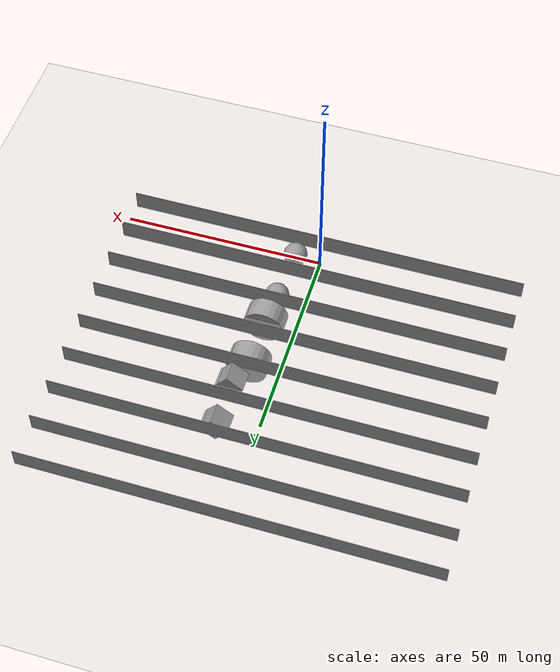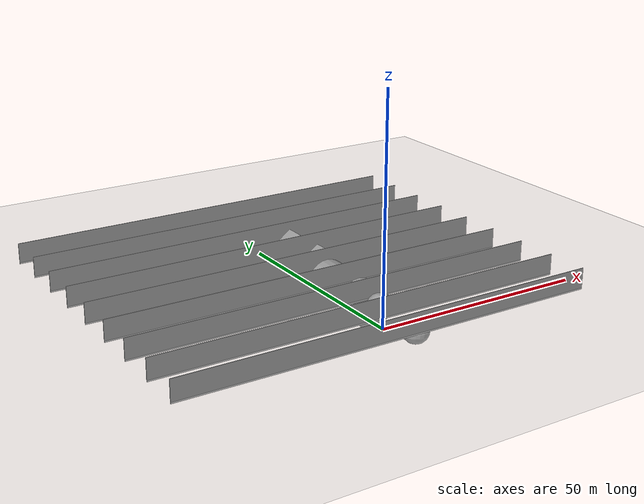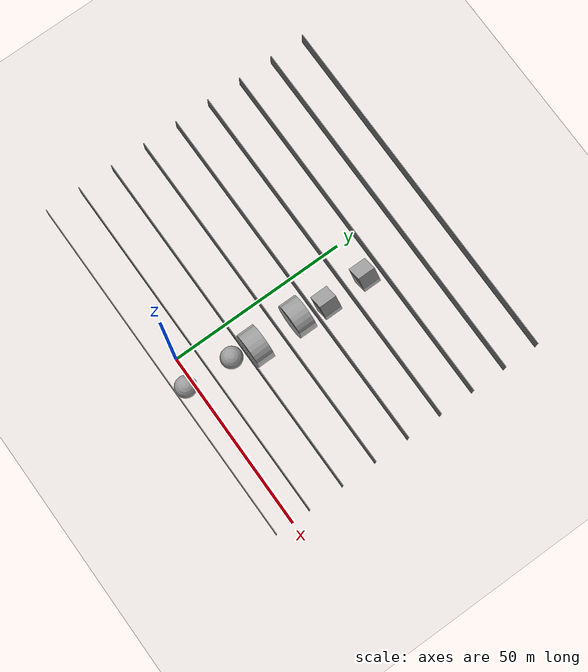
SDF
<sdf version="1.7">
 <world name="default">
  <light name="sun" type="directional">
   <pose>0 0 10 0 -0 0</pose>
   <diffuse>0.8 0.8 0.8 1</diffuse>
   <specular>0.2 0.2 0.2 1</specular>
   <attenuation>
    <range>1000</range>
    <constant>0.9</constant>
    <linear>0.01</linear>
    <quadratic>0.001</quadratic>
   </attenuation>
   <direction>-0.5 0.1 -0.9</direction>
   <spot><inner_angle>0</inner_angle><outer_angle>0</outer_angle><falloff>0</falloff></spot>
  </light>
  <model name="ground_plane">
   <pose>0 35 0 0 -0 0</pose>
   <static>1</static>
   <link name="link">
    <collision name="collision">
     <geometry><plane><normal>0 0 1</normal><size>100 100</size></plane></geometry>
     <surface><friction><ode><mu>100</mu><mu2>50</mu2></ode></friction></surface>
    </collision>
    <visual name="visual">
     <cast_shadows>0</cast_shadows>
     <geometry><plane><normal>0 0 1</normal><size>100 100</size></plane></geometry>
     <material>
      <script><uri>file://media/materials/scripts/gazebo.material</uri><name>Gazebo/Grey</name></script>
     </material>
    </visual>
   </link>
  </model>
  <physics type="ode">
   <real_time_update_rate>0</real_time_update_rate>
   <ode>
    <solver>
     <thread_position_correction>1</thread_position_correction>
     <island_threads>3</island_threads>
     <type>quick</type>
     <iters>50</iters>
     <sor>1.3</sor>
     <use_dynamic_moi_rescaling>0</use_dynamic_moi_rescaling>
    </solver>
    <constraints>
     <cfm>0</cfm>
     <erp>0.2</erp>
     <contact_max_correcting_vel>100</contact_max_correcting_vel>
     <contact_surface_layer>0.001</contact_surface_layer>
    </constraints>
   </ode>
   <max_step_size>0.001</max_step_size>
   <real_time_factor>1</real_time_factor>
  </physics>
  <gravity>0 0 -9.8</gravity>
  <magnetic_field>6e-06 2.3e-05 -4.2e-05</magnetic_field>
  <atmosphere type="adiabatic"/>
  <scene><ambient>0.4 0.4 0.4 1</ambient><background>0.7 0.7 0.7 1</background><shadows>1</shadows></scene>
  <spherical_coordinates>
   <surface_model>EARTH_WGS84</surface_model>
   <latitude_deg>0</latitude_deg>
   <longitude_deg>0</longitude_deg>
   <elevation>0</elevation>
   <heading_deg>0</heading_deg>
  </spherical_coordinates>
  <model name="terrian">
   <static>1</static>
   <link name="link_1">
    <pose>0 -40 0 0 -0 0</pose>
    <visual name="visual">
     <geometry><box><size>100 0.2 5</size></box></geometry>
     <material>
      <lighting>1</lighting>
      <script><uri>file://media/materials/scripts/gazebo.material</uri><name>Gazebo/Grey</name></script>
      <shader type="pixel"><normal_map>__default__</normal_map></shader>
      <ambient>0.3 0.3 0.3 1</ambient>
      <diffuse>0.7 0.7 0.7 1</diffuse>
      <specular>0.01 0.01 0.01 1</specular>
      <emissive>0 0 0 1</emissive>
     </material>
    </visual>
    <visual name="ModelPreview_1::link_1::visual_3">
     <pose>0 30 0 0 -0 0</pose>
     <geometry><box><size>100 0.2 5</size></box></geometry>
     <material>
      <lighting>1</lighting>
      <script><uri>file://media/materials/scripts/gazebo.material</uri><name>Gazebo/Grey</name></script>
      <shader type="pixel"><normal_map>__default__</normal_map></shader>
      <ambient>0.3 0.3 0.3 1</ambient>
      <diffuse>0.7 0.7 0.7 1</diffuse>
      <specular>0.01 0.01 0.01 1</specular>
      <emissive>0 0 0 1</emissive>
     </material>
    </visual>
    <visual name="ModelPreview_1::link_1::visual_6">
     <pose>0 60 0 0 -0 0</pose>
     <geometry><box><size>100 0.2 5</size></box></geometry>
     <material>
      <lighting>1</lighting>
      <script><uri>file://media/materials/scripts/gazebo.material</uri><name>Gazebo/Grey</name></script>
      <shader type="pixel"><normal_map>__default__</normal_map></shader>
      <ambient>0.3 0.3 0.3 1</ambient>
      <diffuse>0.7 0.7 0.7 1</diffuse>
      <specular>0.01 0.01 0.01 1</specular>
      <emissive>0 0 0 1</emissive>
     </material>
    </visual>
    <visual name="ModelPreview_1::link_1::visual_7">
     <pose>0 70 0 0 -0 0</pose>
     <geometry><box><size>100 0.2 5</size></box></geometry>
     <material>
      <lighting>1</lighting>
      <script><uri>file://media/materials/scripts/gazebo.material</uri><name>Gazebo/Grey</name></script>
      <shader type="pixel"><normal_map>__default__</normal_map></shader>
      <ambient>0.3 0.3 0.3 1</ambient>
      <diffuse>0.7 0.7 0.7 1</diffuse>
      <specular>0.01 0.01 0.01 1</specular>
      <emissive>0 0 0 1</emissive>
     </material>
    </visual>
    <visual name="ModelPreview_1::link_1::visual_8">
     <pose>0 80 0 0 -0 0</pose>
     <geometry><box><size>100 0.2 5</size></box></geometry>
     <material>
      <lighting>1</lighting>
      <script><uri>file://media/materials/scripts/gazebo.material</uri><name>Gazebo/Grey</name></script>
      <shader type="pixel"><normal_map>__default__</normal_map></shader>
      <ambient>0.3 0.3 0.3 1</ambient>
      <diffuse>0.7 0.7 0.7 1</diffuse>
      <specular>0.01 0.01 0.01 1</specular>
      <emissive>0 0 0 1</emissive>
     </material>
    </visual>
    <visual name="ModelPreview_1::link_1::visual_5">
     <pose>0 50 0 0 -0 0</pose>
     <geometry><box><size>100 0.2 5</size></box></geometry>
     <material>
      <lighting>1</lighting>
      <script><uri>file://media/materials/scripts/gazebo.material</uri><name>Gazebo/Grey</name></script>
      <shader type="pixel"><normal_map>__default__</normal_map></shader>
      <ambient>0.3 0.3 0.3 1</ambient>
      <diffuse>0.7 0.7 0.7 1</diffuse>
      <specular>0.01 0.01 0.01 1</specular>
      <emissive>0 0 0 1</emissive>
     </material>
    </visual>
    <visual name="ModelPreview_1::link_1::visual_4">
     <pose>0 40 0 0 -0 0</pose>
     <geometry><box><size>100 0.2 5</size></box></geometry>
     <material>
      <lighting>1</lighting>
      <script><uri>file://media/materials/scripts/gazebo.material</uri><name>Gazebo/Grey</name></script>
      <shader type="pixel"><normal_map>__default__</normal_map></shader>
      <ambient>0.3 0.3 0.3 1</ambient>
      <diffuse>0.7 0.7 0.7 1</diffuse>
      <specular>0.01 0.01 0.01 1</specular>
      <emissive>0 0 0 1</emissive>
     </material>
    </visual>
    <visual name="ModelPreview_1::link_1::visual_2">
     <pose>0 20 0 0 -0 0</pose>
     <geometry><box><size>100 0.2 5</size></box></geometry>
     <material>
      <lighting>1</lighting>
      <script><uri>file://media/materials/scripts/gazebo.material</uri><name>Gazebo/Grey</name></script>
      <shader type="pixel"><normal_map>__default__</normal_map></shader>
      <ambient>0.3 0.3 0.3 1</ambient>
      <diffuse>0.7 0.7 0.7 1</diffuse>
      <specular>0.01 0.01 0.01 1</specular>
      <emissive>0 0 0 1</emissive>
     </material>
    </visual>
    <visual name="ModelPreview_1::link_1::visual_1">
     <pose>0 10 0 0 -0 0</pose>
     <geometry><box><size>100 0.2 5</size></box></geometry>
     <material>
      <lighting>1</lighting>
      <script><uri>file://media/materials/scripts/gazebo.material</uri><name>Gazebo/Grey</name></script>
      <shader type="pixel"><normal_map>__default__</normal_map></shader>
      <ambient>0.3 0.3 0.3 1</ambient>
      <diffuse>0.7 0.7 0.7 1</diffuse>
      <specular>0.01 0.01 0.01 1</specular>
      <emissive>0 0 0 1</emissive>
     </material>
    </visual>
    <collision name="collision">
     <geometry><box><size>100 0.2 5</size></box></geometry>
     <surface>
      <friction>
       <ode><mu>1</mu><mu2>1</mu2><fdir1>0 0 0</fdir1><slip1>0</slip1><slip2>0</slip2></ode>
       <torsional>
        <coefficient>1</coefficient>
        <patch_radius>0</patch_radius>
        <surface_radius>0</surface_radius>
        <use_patch_radius>1</use_patch_radius>
        <ode><slip>0</slip></ode>
       </torsional>
      </friction>
      <bounce><restitution_coefficient>0</restitution_coefficient><threshold>1e+06</threshold></bounce>
      <contact>
       <collide_without_contact>0</collide_without_contact>
       <collide_without_contact_bitmask>1</collide_without_contact_bitmask>
       <collide_bitmask>1</collide_bitmask>
       <ode>
        <soft_cfm>0</soft_cfm>
        <soft_erp>0.2</soft_erp>
        <kp>1e+13</kp>
        <kd>1</kd>
        <max_vel>0.01</max_vel>
        <min_depth>0</min_depth>
       </ode>
       <bullet>
        <split_impulse>1</split_impulse>
        <split_impulse_penetration_threshold>-0.01</split_impulse_penetration_threshold>
        <soft_cfm>0</soft_cfm>
        <soft_erp>0.2</soft_erp>
        <kp>1e+13</kp>
        <kd>1</kd>
       </bullet>
      </contact>
     </surface>
    </collision>
    <collision name="collision_3">
     <pose>0 30 0 0 -0 0</pose>
     <geometry><box><size>100 0.2 5</size></box></geometry>
     <surface>
      <friction>
       <ode><mu>1</mu><mu2>1</mu2><fdir1>0 0 0</fdir1><slip1>0</slip1><slip2>0</slip2></ode>
       <torsional>
        <coefficient>1</coefficient>
        <patch_radius>0</patch_radius>
        <surface_radius>0</surface_radius>
        <use_patch_radius>1</use_patch_radius>
        <ode><slip>0</slip></ode>
       </torsional>
      </friction>
      <bounce><restitution_coefficient>0</restitution_coefficient><threshold>1e+06</threshold></bounce>
      <contact>
       <collide_without_contact>0</collide_without_contact>
       <collide_without_contact_bitmask>1</collide_without_contact_bitmask>
       <collide_bitmask>1</collide_bitmask>
       <ode>
        <soft_cfm>0</soft_cfm>
        <soft_erp>0.2</soft_erp>
        <kp>1e+13</kp>
        <kd>1</kd>
        <max_vel>0.01</max_vel>
        <min_depth>0</min_depth>
       </ode>
       <bullet>
        <split_impulse>1</split_impulse>
        <split_impulse_penetration_threshold>-0.01</split_impulse_penetration_threshold>
        <soft_cfm>0</soft_cfm>
        <soft_erp>0.2</soft_erp>
        <kp>1e+13</kp>
        <kd>1</kd>
       </bullet>
      </contact>
     </surface>
    </collision>
    <collision name="collision_7">
     <pose>0 70 0 0 -0 0</pose>
     <geometry><box><size>100 0.2 5</size></box></geometry>
     <surface>
      <friction>
       <ode><mu>1</mu><mu2>1</mu2><fdir1>0 0 0</fdir1><slip1>0</slip1><slip2>0</slip2></ode>
       <torsional>
        <coefficient>1</coefficient>
        <patch_radius>0</patch_radius>
        <surface_radius>0</surface_radius>
        <use_patch_radius>1</use_patch_radius>
        <ode><slip>0</slip></ode>
       </torsional>
      </friction>
      <bounce><restitution_coefficient>0</restitution_coefficient><threshold>1e+06</threshold></bounce>
      <contact>
       <collide_without_contact>0</collide_without_contact>
       <collide_without_contact_bitmask>1</collide_without_contact_bitmask>
       <collide_bitmask>1</collide_bitmask>
       <ode>
        <soft_cfm>0</soft_cfm>
        <soft_erp>0.2</soft_erp>
        <kp>1e+13</kp>
        <kd>1</kd>
        <max_vel>0.01</max_vel>
        <min_depth>0</min_depth>
       </ode>
       <bullet>
        <split_impulse>1</split_impulse>
        <split_impulse_penetration_threshold>-0.01</split_impulse_penetration_threshold>
        <soft_cfm>0</soft_cfm>
        <soft_erp>0.2</soft_erp>
        <kp>1e+13</kp>
        <kd>1</kd>
       </bullet>
      </contact>
     </surface>
    </collision>
    <collision name="collision_6">
     <pose>0 60 0 0 -0 0</pose>
     <geometry><box><size>100 0.2 5</size></box></geometry>
     <surface>
      <friction>
       <ode><mu>1</mu><mu2>1</mu2><fdir1>0 0 0</fdir1><slip1>0</slip1><slip2>0</slip2></ode>
       <torsional>
        <coefficient>1</coefficient>
        <patch_radius>0</patch_radius>
        <surface_radius>0</surface_radius>
        <use_patch_radius>1</use_patch_radius>
        <ode><slip>0</slip></ode>
       </torsional>
      </friction>
      <bounce><restitution_coefficient>0</restitution_coefficient><threshold>1e+06</threshold></bounce>
      <contact>
       <collide_without_contact>0</collide_without_contact>
       <collide_without_contact_bitmask>1</collide_without_contact_bitmask>
       <collide_bitmask>1</collide_bitmask>
       <ode>
        <soft_cfm>0</soft_cfm>
        <soft_erp>0.2</soft_erp>
        <kp>1e+13</kp>
        <kd>1</kd>
        <max_vel>0.01</max_vel>
        <min_depth>0</min_depth>
       </ode>
       <bullet>
        <split_impulse>1</split_impulse>
        <split_impulse_penetration_threshold>-0.01</split_impulse_penetration_threshold>
        <soft_cfm>0</soft_cfm>
        <soft_erp>0.2</soft_erp>
        <kp>1e+13</kp>
        <kd>1</kd>
       </bullet>
      </contact>
     </surface>
    </collision>
    <collision name="collision_5">
     <pose>0 50 0 0 -0 0</pose>
     <geometry><box><size>100 0.2 5</size></box></geometry>
     <surface>
      <friction>
       <ode><mu>1</mu><mu2>1</mu2><fdir1>0 0 0</fdir1><slip1>0</slip1><slip2>0</slip2></ode>
       <torsional>
        <coefficient>1</coefficient>
        <patch_radius>0</patch_radius>
        <surface_radius>0</surface_radius>
        <use_patch_radius>1</use_patch_radius>
        <ode><slip>0</slip></ode>
       </torsional>
      </friction>
      <bounce><restitution_coefficient>0</restitution_coefficient><threshold>1e+06</threshold></bounce>
      <contact>
       <collide_without_contact>0</collide_without_contact>
       <collide_without_contact_bitmask>1</collide_without_contact_bitmask>
       <collide_bitmask>1</collide_bitmask>
       <ode>
        <soft_cfm>0</soft_cfm>
        <soft_erp>0.2</soft_erp>
        <kp>1e+13</kp>
        <kd>1</kd>
        <max_vel>0.01</max_vel>
        <min_depth>0</min_depth>
       </ode>
       <bullet>
        <split_impulse>1</split_impulse>
        <split_impulse_penetration_threshold>-0.01</split_impulse_penetration_threshold>
        <soft_cfm>0</soft_cfm>
        <soft_erp>0.2</soft_erp>
        <kp>1e+13</kp>
        <kd>1</kd>
       </bullet>
      </contact>
     </surface>
    </collision>
    <collision name="collision_8">
     <pose>0 80 0 0 -0 0</pose>
     <geometry><box><size>100 0.2 5</size></box></geometry>
     <surface>
      <friction>
       <ode><mu>1</mu><mu2>1</mu2><fdir1>0 0 0</fdir1><slip1>0</slip1><slip2>0</slip2></ode>
       <torsional>
        <coefficient>1</coefficient>
        <patch_radius>0</patch_radius>
        <surface_radius>0</surface_radius>
        <use_patch_radius>1</use_patch_radius>
        <ode><slip>0</slip></ode>
       </torsional>
      </friction>
      <bounce><restitution_coefficient>0</restitution_coefficient><threshold>1e+06</threshold></bounce>
      <contact>
       <collide_without_contact>0</collide_without_contact>
       <collide_without_contact_bitmask>1</collide_without_contact_bitmask>
       <collide_bitmask>1</collide_bitmask>
       <ode>
        <soft_cfm>0</soft_cfm>
        <soft_erp>0.2</soft_erp>
        <kp>1e+13</kp>
        <kd>1</kd>
        <max_vel>0.01</max_vel>
        <min_depth>0</min_depth>
       </ode>
       <bullet>
        <split_impulse>1</split_impulse>
        <split_impulse_penetration_threshold>-0.01</split_impulse_penetration_threshold>
        <soft_cfm>0</soft_cfm>
        <soft_erp>0.2</soft_erp>
        <kp>1e+13</kp>
        <kd>1</kd>
       </bullet>
      </contact>
     </surface>
    </collision>
    <collision name="collision_2">
     <pose>0 20 0 0 -0 0</pose>
     <geometry><box><size>100 0.2 5</size></box></geometry>
     <surface>
      <friction>
       <ode><mu>1</mu><mu2>1</mu2><fdir1>0 0 0</fdir1><slip1>0</slip1><slip2>0</slip2></ode>
       <torsional>
        <coefficient>1</coefficient>
        <patch_radius>0</patch_radius>
        <surface_radius>0</surface_radius>
        <use_patch_radius>1</use_patch_radius>
        <ode><slip>0</slip></ode>
       </torsional>
      </friction>
      <bounce><restitution_coefficient>0</restitution_coefficient><threshold>1e+06</threshold></bounce>
      <contact>
       <collide_without_contact>0</collide_without_contact>
       <collide_without_contact_bitmask>1</collide_without_contact_bitmask>
       <collide_bitmask>1</collide_bitmask>
       <ode>
        <soft_cfm>0</soft_cfm>
        <soft_erp>0.2</soft_erp>
        <kp>1e+13</kp>
        <kd>1</kd>
        <max_vel>0.01</max_vel>
        <min_depth>0</min_depth>
       </ode>
       <bullet>
        <split_impulse>1</split_impulse>
        <split_impulse_penetration_threshold>-0.01</split_impulse_penetration_threshold>
        <soft_cfm>0</soft_cfm>
        <soft_erp>0.2</soft_erp>
        <kp>1e+13</kp>
        <kd>1</kd>
       </bullet>
      </contact>
     </surface>
    </collision>
    <collision name="collision_4">
     <pose>0 40 0 0 -0 0</pose>
     <geometry><box><size>100 0.2 5</size></box></geometry>
     <surface>
      <friction>
       <ode><mu>1</mu><mu2>1</mu2><fdir1>0 0 0</fdir1><slip1>0</slip1><slip2>0</slip2></ode>
       <torsional>
        <coefficient>1</coefficient>
        <patch_radius>0</patch_radius>
        <surface_radius>0</surface_radius>
        <use_patch_radius>1</use_patch_radius>
        <ode><slip>0</slip></ode>
       </torsional>
      </friction>
      <bounce><restitution_coefficient>0</restitution_coefficient><threshold>1e+06</threshold></bounce>
      <contact>
       <collide_without_contact>0</collide_without_contact>
       <collide_without_contact_bitmask>1</collide_without_contact_bitmask>
       <collide_bitmask>1</collide_bitmask>
       <ode>
        <soft_cfm>0</soft_cfm>
        <soft_erp>0.2</soft_erp>
        <kp>1e+13</kp>
        <kd>1</kd>
        <max_vel>0.01</max_vel>
        <min_depth>0</min_depth>
       </ode>
       <bullet>
        <split_impulse>1</split_impulse>
        <split_impulse_penetration_threshold>-0.01</split_impulse_penetration_threshold>
        <soft_cfm>0</soft_cfm>
        <soft_erp>0.2</soft_erp>
        <kp>1e+13</kp>
        <kd>1</kd>
       </bullet>
      </contact>
     </surface>
    </collision>
    <collision name="collision_1">
     <pose>0 10 0 0 -0 0</pose>
     <geometry><box><size>100 0.2 5</size></box></geometry>
     <surface>
      <friction>
       <ode><mu>1</mu><mu2>1</mu2><fdir1>0 0 0</fdir1><slip1>0</slip1><slip2>0</slip2></ode>
       <torsional>
        <coefficient>1</coefficient>
        <patch_radius>0</patch_radius>
        <surface_radius>0</surface_radius>
        <use_patch_radius>1</use_patch_radius>
        <ode><slip>0</slip></ode>
       </torsional>
      </friction>
      <bounce><restitution_coefficient>0</restitution_coefficient><threshold>1e+06</threshold></bounce>
      <contact>
       <collide_without_contact>0</collide_without_contact>
       <collide_without_contact_bitmask>1</collide_without_contact_bitmask>
       <collide_bitmask>1</collide_bitmask>
       <ode>
        <soft_cfm>0</soft_cfm>
        <soft_erp>0.2</soft_erp>
        <kp>1e+13</kp>
        <kd>1</kd>
        <max_vel>0.01</max_vel>
        <min_depth>0</min_depth>
       </ode>
       <bullet>
        <split_impulse>1</split_impulse>
        <split_impulse_penetration_threshold>-0.01</split_impulse_penetration_threshold>
        <soft_cfm>0</soft_cfm>
        <soft_erp>0.2</soft_erp>
        <kp>1e+13</kp>
        <kd>1</kd>
       </bullet>
      </contact>
     </surface>
    </collision>
   </link>
   <link name="link_1_0">
    <pose>6.79375 -37.0006 -3 0 -0 0</pose>
    <visual name="visual">
     <geometry><sphere><radius>3</radius></sphere></geometry>
     <material>
      <lighting>1</lighting>
      <script><uri>file://media/materials/scripts/gazebo.material</uri><name>Gazebo/Grey</name></script>
      <shader type="pixel"><normal_map>__default__</normal_map></shader>
      <ambient>0.3 0.3 0.3 1</ambient>
      <diffuse>0.7 0.7 0.7 1</diffuse>
      <specular>0.01 0.01 0.01 1</specular>
      <emissive>0 0 0 1</emissive>
     </material>
    </visual>
    <collision name="collision">
     <geometry><sphere><radius>3</radius></sphere></geometry>
     <surface>
      <friction>
       <ode><mu>1</mu><mu2>1</mu2><fdir1>0 0 0</fdir1><slip1>0</slip1><slip2>0</slip2></ode>
       <torsional>
        <coefficient>1</coefficient>
        <patch_radius>0</patch_radius>
        <surface_radius>0</surface_radius>
        <use_patch_radius>1</use_patch_radius>
        <ode><slip>0</slip></ode>
       </torsional>
      </friction>
      <bounce><restitution_coefficient>0</restitution_coefficient><threshold>1e+06</threshold></bounce>
      <contact>
       <collide_without_contact>0</collide_without_contact>
       <collide_without_contact_bitmask>1</collide_without_contact_bitmask>
       <collide_bitmask>1</collide_bitmask>
       <ode>
        <soft_cfm>0</soft_cfm>
        <soft_erp>0.2</soft_erp>
        <kp>1e+13</kp>
        <kd>1</kd>
        <max_vel>0.01</max_vel>
        <min_depth>0</min_depth>
       </ode>
       <bullet>
        <split_impulse>1</split_impulse>
        <split_impulse_penetration_threshold>-0.01</split_impulse_penetration_threshold>
        <soft_cfm>0</soft_cfm>
        <soft_erp>0.2</soft_erp>
        <kp>1e+13</kp>
        <kd>1</kd>
       </bullet>
      </contact>
     </surface>
    </collision>
   </link>
   <link name="link_1_0_clone">
    <pose>7.46613 -23.4203 -3 0 -0 0</pose>
    <visual name="visual_0">
     <geometry><sphere><radius>3</radius></sphere></geometry>
     <material>
      <lighting>1</lighting>
      <script><uri>file://media/materials/scripts/gazebo.material</uri><name>Gazebo/Grey</name></script>
      <shader type="pixel"><normal_map>__default__</normal_map></shader>
      <ambient>0.3 0.3 0.3 1</ambient>
      <diffuse>0.7 0.7 0.7 1</diffuse>
      <specular>0.01 0.01 0.01 1</specular>
      <emissive>0 0 0 1</emissive>
     </material>
    </visual>
    <collision name="collision">
     <geometry><sphere><radius>3</radius></sphere></geometry>
     <surface>
      <friction>
       <ode><mu>1</mu><mu2>1</mu2><fdir1>0 0 0</fdir1><slip1>0</slip1><slip2>0</slip2></ode>
       <torsional>
        <coefficient>1</coefficient>
        <patch_radius>0</patch_radius>
        <surface_radius>0</surface_radius>
        <use_patch_radius>1</use_patch_radius>
        <ode><slip>0</slip></ode>
       </torsional>
      </friction>
      <bounce><restitution_coefficient>0</restitution_coefficient><threshold>1e+06</threshold></bounce>
      <contact>
       <collide_without_contact>0</collide_without_contact>
       <collide_without_contact_bitmask>1</collide_without_contact_bitmask>
       <collide_bitmask>1</collide_bitmask>
       <ode>
        <soft_cfm>0</soft_cfm>
        <soft_erp>0.2</soft_erp>
        <kp>1e+13</kp>
        <kd>1</kd>
        <max_vel>0.01</max_vel>
        <min_depth>0</min_depth>
       </ode>
       <bullet>
        <split_impulse>1</split_impulse>
        <split_impulse_penetration_threshold>-0.01</split_impulse_penetration_threshold>
        <soft_cfm>0</soft_cfm>
        <soft_erp>0.2</soft_erp>
        <kp>1e+13</kp>
        <kd>1</kd>
       </bullet>
      </contact>
     </surface>
    </collision>
   </link>
   <link name="link_2">
    <pose>8.34586 -16.656 -4.81528 1.5707 -0 0</pose>
    <visual name="visual">
     <geometry><cylinder><radius>5</radius><length>5</length></cylinder></geometry>
     <material>
      <lighting>1</lighting>
      <script><uri>file://media/materials/scripts/gazebo.material</uri><name>Gazebo/Grey</name></script>
      <shader type="pixel"><normal_map>__default__</normal_map></shader>
      <ambient>0.3 0.3 0.3 1</ambient>
      <diffuse>0.7 0.7 0.7 1</diffuse>
      <specular>0.01 0.01 0.01 1</specular>
      <emissive>0 0 0 1</emissive>
     </material>
    </visual>
    <collision name="collision">
     <geometry><cylinder><radius>5</radius><length>5</length></cylinder></geometry>
     <surface>
      <friction>
       <ode><mu>1</mu><mu2>1</mu2><fdir1>0 0 0</fdir1><slip1>0</slip1><slip2>0</slip2></ode>
       <torsional>
        <coefficient>1</coefficient>
        <patch_radius>0</patch_radius>
        <surface_radius>0</surface_radius>
        <use_patch_radius>1</use_patch_radius>
        <ode><slip>0</slip></ode>
       </torsional>
      </friction>
      <bounce><restitution_coefficient>0</restitution_coefficient><threshold>1e+06</threshold></bounce>
      <contact>
       <collide_without_contact>0</collide_without_contact>
       <collide_without_contact_bitmask>1</collide_without_contact_bitmask>
       <collide_bitmask>1</collide_bitmask>
       <ode>
        <soft_cfm>0</soft_cfm>
        <soft_erp>0.2</soft_erp>
        <kp>1e+13</kp>
        <kd>1</kd>
        <max_vel>0.01</max_vel>
        <min_depth>0</min_depth>
       </ode>
       <bullet>
        <split_impulse>1</split_impulse>
        <split_impulse_penetration_threshold>-0.01</split_impulse_penetration_threshold>
        <soft_cfm>0</soft_cfm>
        <soft_erp>0.2</soft_erp>
        <kp>1e+13</kp>
        <kd>1</kd>
       </bullet>
      </contact>
     </surface>
    </collision>
   </link>
   <link name="link_2_clone">
    <pose>8.43703 -3.60754 -4.81528 1.5707 -0 0</pose>
    <visual name="visual">
     <geometry><cylinder><radius>5</radius><length>5</length></cylinder></geometry>
     <material>
      <lighting>1</lighting>
      <script><uri>file://media/materials/scripts/gazebo.material</uri><name>Gazebo/Grey</name></script>
      <shader type="pixel"><normal_map>__default__</normal_map></shader>
      <ambient>0.3 0.3 0.3 1</ambient>
      <diffuse>0.7 0.7 0.7 1</diffuse>
      <specular>0.01 0.01 0.01 1</specular>
      <emissive>0 0 0 1</emissive>
     </material>
    </visual>
    <collision name="collision">
     <geometry><cylinder><radius>5</radius><length>5</length></cylinder></geometry>
     <surface>
      <friction>
       <ode><mu>1</mu><mu2>1</mu2><fdir1>0 0 0</fdir1><slip1>0</slip1><slip2>0</slip2></ode>
       <torsional>
        <coefficient>1</coefficient>
        <patch_radius>0</patch_radius>
        <surface_radius>0</surface_radius>
        <use_patch_radius>1</use_patch_radius>
        <ode><slip>0</slip></ode>
       </torsional>
      </friction>
      <bounce><restitution_coefficient>0</restitution_coefficient><threshold>1e+06</threshold></bounce>
      <contact>
       <collide_without_contact>0</collide_without_contact>
       <collide_without_contact_bitmask>1</collide_without_contact_bitmask>
       <collide_bitmask>1</collide_bitmask>
       <ode>
        <soft_cfm>0</soft_cfm>
        <soft_erp>0.2</soft_erp>
        <kp>1e+13</kp>
        <kd>1</kd>
        <max_vel>0.01</max_vel>
        <min_depth>0</min_depth>
       </ode>
       <bullet>
        <split_impulse>1</split_impulse>
        <split_impulse_penetration_threshold>-0.01</split_impulse_penetration_threshold>
        <soft_cfm>0</soft_cfm>
        <soft_erp>0.2</soft_erp>
        <kp>1e+13</kp>
        <kd>1</kd>
       </bullet>
      </contact>
     </surface>
    </collision>
   </link>
   <link name="link_3">
    <pose>10.1816 4.09558 -2.46049 0 -0.655385 0</pose>
    <visual name="visual">
     <geometry><box><size>5 5 5</size></box></geometry>
     <material>
      <lighting>1</lighting>
      <script><uri>file://media/materials/scripts/gazebo.material</uri><name>Gazebo/Grey</name></script>
      <shader type="pixel"><normal_map>__default__</normal_map></shader>
      <ambient>0.3 0.3 0.3 1</ambient>
      <diffuse>0.7 0.7 0.7 1</diffuse>
      <specular>0.01 0.01 0.01 1</specular>
      <emissive>0 0 0 1</emissive>
     </material>
    </visual>
    <collision name="collision">
     <geometry><box><size>5 5 5</size></box></geometry>
     <surface>
      <friction>
       <ode><mu>1</mu><mu2>1</mu2><fdir1>0 0 0</fdir1><slip1>0</slip1><slip2>0</slip2></ode>
       <torsional>
        <coefficient>1</coefficient>
        <patch_radius>0</patch_radius>
        <surface_radius>0</surface_radius>
        <use_patch_radius>1</use_patch_radius>
        <ode><slip>0</slip></ode>
       </torsional>
      </friction>
      <bounce><restitution_coefficient>0</restitution_coefficient><threshold>1e+06</threshold></bounce>
      <contact>
       <collide_without_contact>0</collide_without_contact>
       <collide_without_contact_bitmask>1</collide_without_contact_bitmask>
       <collide_bitmask>1</collide_bitmask>
       <ode>
        <soft_cfm>0</soft_cfm>
        <soft_erp>0.2</soft_erp>
        <kp>1e+13</kp>
        <kd>1</kd>
        <max_vel>0.01</max_vel>
        <min_depth>0</min_depth>
       </ode>
       <bullet>
        <split_impulse>1</split_impulse>
        <split_impulse_penetration_threshold>-0.01</split_impulse_penetration_threshold>
        <soft_cfm>0</soft_cfm>
        <soft_erp>0.2</soft_erp>
        <kp>1e+13</kp>
        <kd>1</kd>
       </bullet>
      </contact>
     </surface>
    </collision>
   </link>
   <link name="link_3_clone">
    <pose>9.98848 16.2676 -2.46049 0 -0.655385 0</pose>
    <visual name="visual">
     <geometry><box><size>5 5 5</size></box></geometry>
     <material>
      <lighting>1</lighting>
      <script><uri>file://media/materials/scripts/gazebo.material</uri><name>Gazebo/Grey</name></script>
      <shader type="pixel"><normal_map>__default__</normal_map></shader>
      <ambient>0.3 0.3 0.3 1</ambient>
      <diffuse>0.7 0.7 0.7 1</diffuse>
      <specular>0.01 0.01 0.01 1</specular>
      <emissive>0 0 0 1</emissive>
     </material>
    </visual>
    <collision name="collision">
     <geometry><box><size>5 5 5</size></box></geometry>
     <surface>
      <friction>
       <ode><mu>1</mu><mu2>1</mu2><fdir1>0 0 0</fdir1><slip1>0</slip1><slip2>0</slip2></ode>
       <torsional>
        <coefficient>1</coefficient>
        <patch_radius>0</patch_radius>
        <surface_radius>0</surface_radius>
        <use_patch_radius>1</use_patch_radius>
        <ode><slip>0</slip></ode>
       </torsional>
      </friction>
      <bounce><restitution_coefficient>0</restitution_coefficient><threshold>1e+06</threshold></bounce>
      <contact>
       <collide_without_contact>0</collide_without_contact>
       <collide_without_contact_bitmask>1</collide_without_contact_bitmask>
       <collide_bitmask>1</collide_bitmask>
       <ode>
        <soft_cfm>0</soft_cfm>
        <soft_erp>0.2</soft_erp>
        <kp>1e+13</kp>
        <kd>1</kd>
        <max_vel>0.01</max_vel>
        <min_depth>0</min_depth>
       </ode>
       <bullet>
        <split_impulse>1</split_impulse>
        <split_impulse_penetration_threshold>-0.01</split_impulse_penetration_threshold>
        <soft_cfm>0</soft_cfm>
        <soft_erp>0.2</soft_erp>
        <kp>1e+13</kp>
        <kd>1</kd>
       </bullet>
      </contact>
     </surface>
    </collision>
   </link>
   <static>1</static>
   <pose>0.071091 35 2 0 -0 0</pose>
  </model>
 </world>
</sdf>
